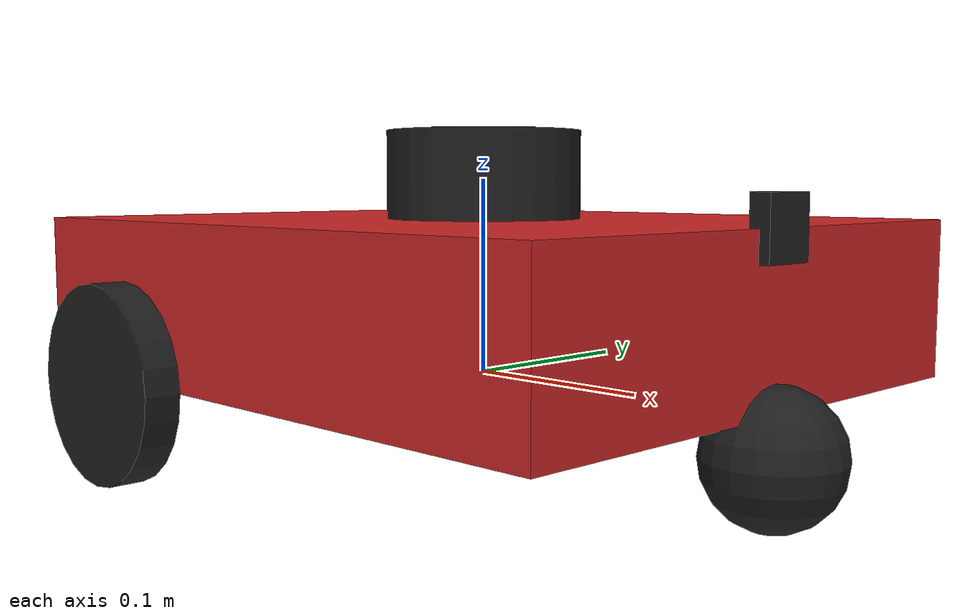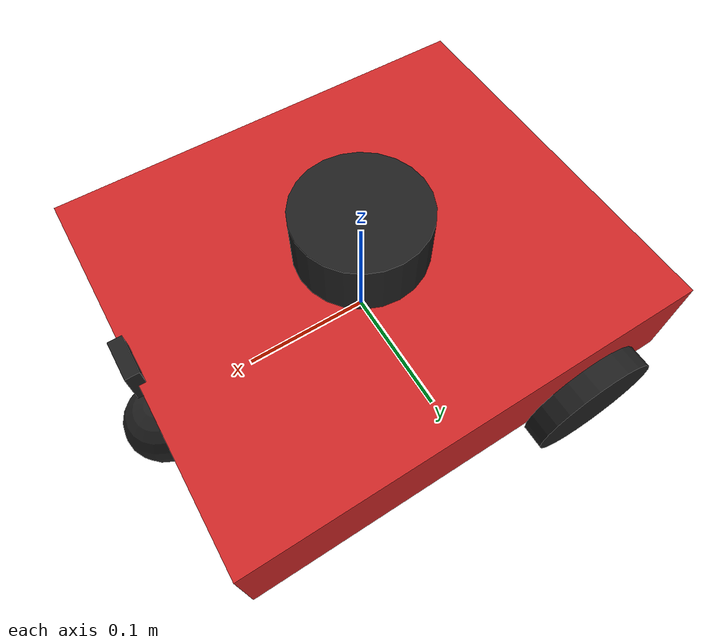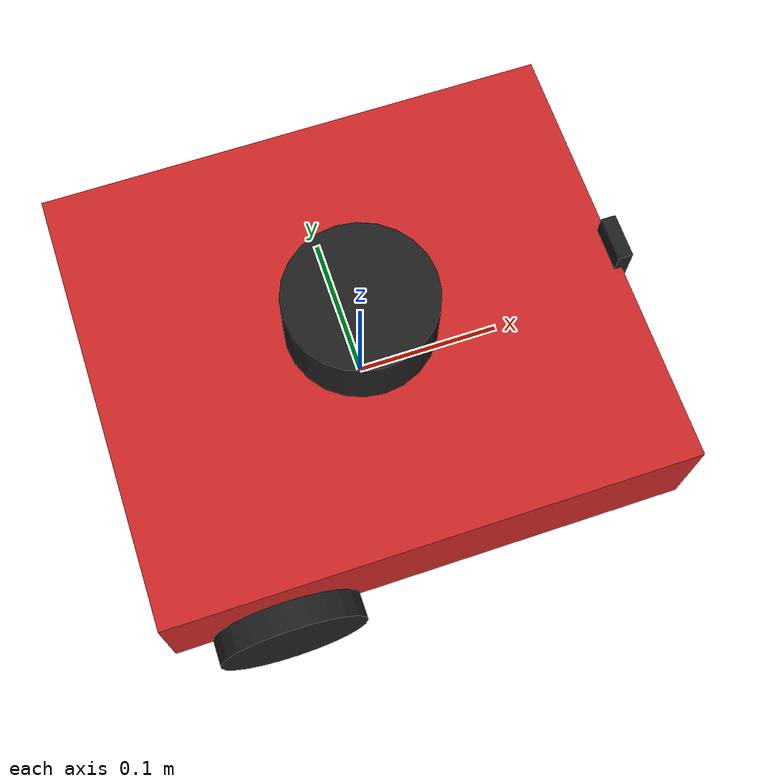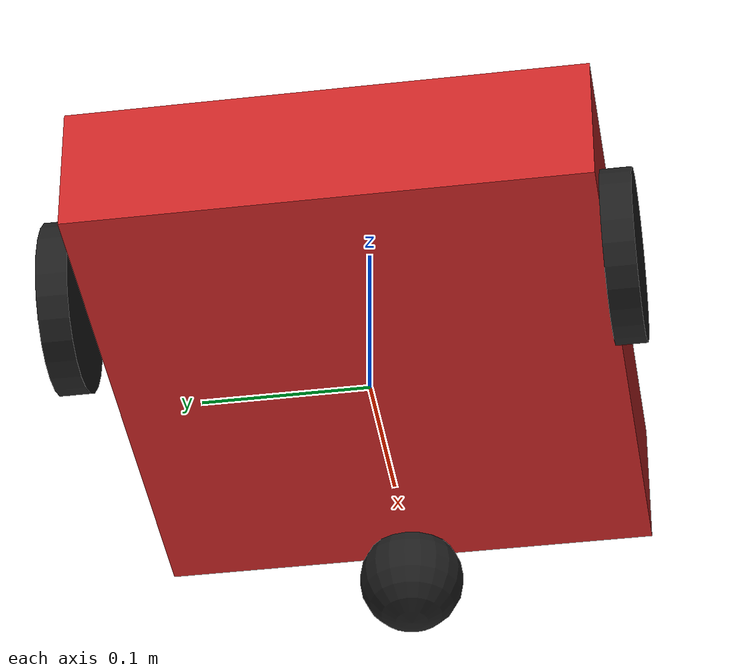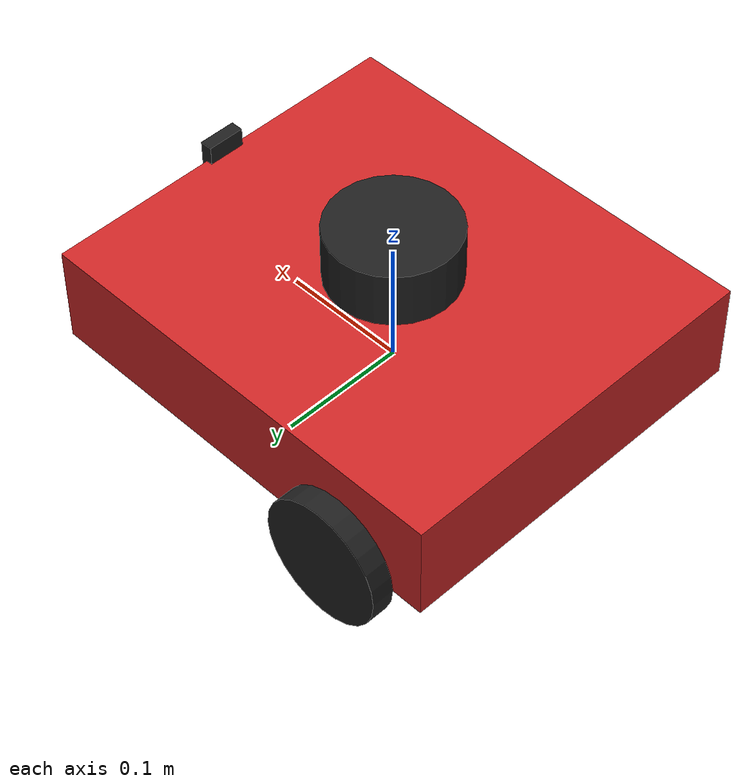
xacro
<?xml version="1.0"?>
<robot xmlns:xacro="http://www.ros.org/wiki/xacro"  name="diff_bot">
    <!-- Main URDF file for Differential Drive Robot -->

    <!-- Include general xacro macros -->
    <xacro:include filename="common.xacro"/>

    <!-- Include sensors -->
    <xacro:include filename="lidar.xacro"/>
    <xacro:include filename="depth_camera.xacro"/>

    <!-- Extra sensors -->

    <!-- Robot Variables -->
    <xacro:property name="chassis_length" value="0.35"/>
    <xacro:property name="chassis_width" value="0.3"/>
    <xacro:property name="chassis_height" value="0.08"/>
    <xacro:property name="chassis_mass" value="4.0"/>
    <xacro:property name="wheel_radius" value="0.05"/>
    <xacro:property name="wheel_thickness" value="0.018"/>
    <xacro:property name="wheel_mass" value="0.3"/>
    <xacro:property name="wheel_offset_x" value="0.1"/>
    <xacro:property name="wheel_offset_y" value="${chassis_width/2 + wheel_thickness/2}"/>
    <xacro:property name="wheel_offset_z" value="0.0"/>
    <xacro:property name="caster_wheel_radius" value="0.032225"/>
    <xacro:property name="caster_wheel_mass" value="0.2"/>
    <xacro:property name="caster_wheel_offset_x" value="${chassis_length/2}"/>
    <xacro:property name="caster_wheel_offset_z" value="${wheel_offset_z - wheel_radius + caster_wheel_radius}"/>

    <!-- Base Link -->
    <link name="base_link"></link>

    <!-- Base Footprint -->
    <joint name="base_footprint_joint" type="fixed">
        <parent link="base_link"/>
        <child link="base_footprint"/>
        <origin xyz="0 0 0" rpy="0 0 0"/>
    </joint>
    <link name="base_footprint"></link>

    <!-- Chassis -->
    <joint name="chassis_joint" type="fixed">
        <parent link="base_link"/>
        <child link="chassis"/>
        <origin xyz="0 0 0"/>
    </joint>
    <link name="chassis">
        <visual>
            <origin xyz="0 0 ${chassis_height/2}"/>
            <geometry>
                <box size="${chassis_length} ${chassis_width} ${chassis_height}"/>
            </geometry>
            <material name="red"/>
        </visual>
        <collision>
            <origin xyz="0 0 ${chassis_height/2}"/>
            <geometry>
                <box size="${chassis_length} ${chassis_width} ${chassis_height}"/>
            </geometry>
        </collision>
        <xacro:inertial_box mass="0.5" x="${chassis_length}" y="${chassis_width}" z="${chassis_height}">
            <origin xyz="0 0 ${chassis_height/2}" rpy="0 0 0"/>
        </xacro:inertial_box>
    </link>

    <!-- Left Wheel -->
    <joint name="left_wheel_joint" type="continuous">
        <parent link="base_link"/>
        <child link="left_wheel"/>
        <origin xyz="${-wheel_offset_x} ${wheel_offset_y} 0" rpy="-${pi/2} 0 0" />
        <axis xyz="0 0 1"/>
    </joint>
    <link name="left_wheel">
        <visual>
            <geometry>
                <cylinder radius="${wheel_radius}" length="${wheel_thickness}"/>
            </geometry>
            <material name="black"/>
        </visual>
        <collision>
            <geometry>
                <sphere radius="${wheel_radius}"/>
            </geometry>
        </collision>
        <xacro:inertial_cylinder mass="${wheel_mass}" length="${wheel_thickness}" radius="${wheel_radius}">
            <origin xyz="0 0 0" rpy="0 0 0"/>
        </xacro:inertial_cylinder>
    </link>

    <!-- Right Wheel -->
    <joint name="right_wheel_joint" type="continuous">
        <parent link="base_link"/>
        <child link="right_wheel"/>
        <origin xyz="${-wheel_offset_x} ${-wheel_offset_y} 0" rpy="${pi/2} 0 0" />
        <axis xyz="0 0 -1"/>
    </joint>
    <link name="right_wheel">
        <visual>
            <geometry>
                <cylinder radius="${wheel_radius}" length="${wheel_thickness}"/>
            </geometry>
            <material name="black"/>
        </visual>
        <collision>
            <geometry>
                <sphere radius="${wheel_radius}"/>
            </geometry>
        </collision>
        <xacro:inertial_cylinder mass="${wheel_mass}" length="${wheel_thickness}" radius="${wheel_radius}">
            <origin xyz="0 0 0" rpy="0 0 0"/>
        </xacro:inertial_cylinder>
    </link>

    <!-- Caster Wheel -->
    <joint name="caster_wheel_joint" type="fixed">
        <parent link="chassis"/>
        <child link="caster_wheel"/>
        <origin xyz="${caster_wheel_offset_x} 0 ${caster_wheel_offset_z}"/>
    </joint>
    <link name="caster_wheel">
        <visual>
            <geometry>
                <sphere radius="${caster_wheel_radius}"/>
            </geometry>
            <material name="black"/>
        </visual>
        <collision>
            <geometry>
                <sphere radius="${caster_wheel_radius}"/>
            </geometry>
        </collision>
        <xacro:inertial_sphere mass="${caster_wheel_mass}" radius="${caster_wheel_radius}">
            <origin xyz="0 0 0" rpy="0 0 0"/>
        </xacro:inertial_sphere>
    </link>

    <!-- Gazebo -->
    <gazebo reference="chassis">
        <material>Gazebo/Red</material>
    </gazebo>

    <gazebo reference="left_wheel">
        <material>Gazebo/Black</material>
    </gazebo>

    <gazebo reference="right_wheel">
        <material>Gazebo/Black</material>
    </gazebo>

    <gazebo reference="caster_wheel">
        <material>Gazebo/Black</material>
        <mu1 value="0.001"/>
        <mu2 value="0.001"/>
    </gazebo>

    <!-- Gazebo plugins -->
    <gazebo>
        <!-- Differential Drive Robot -->
        <plugin filename="gz-sim-diff-drive-system" name="gz::sim::systems::DiffDrive">
            <!-- Wheels -->
            <left_joint>left_wheel_joint</left_joint>
            <right_joint>right_wheel_joint</right_joint>
            <wheel_separation>${wheel_offset_y*2}</wheel_separation>
            <wheel_radius>${wheel_radius}</wheel_radius>
            <!-- Limits -->
            <max_linear_acceleration>6.0</max_linear_acceleration>
            <!-- Frames -->
            <frame_id>odom</frame_id>
            <child_frame_id>base_link</child_frame_id>
            <!-- Output -->
            <tf_topic>/tf</tf_topic>
            <topic>cmd_vel</topic>
            <odom_topic>odom</odom_topic>
            <odom_publisher_frequency>30</odom_publisher_frequency>
        </plugin>

        <!-- Joint State Publisher -->
        <plugin filename="gz-sim-joint-state-publisher-system" name="gz::sim::systems::JointStatePublisher">
            <topic>joint_states</topic>
            <joint_name>left_wheel_joint</joint_name>
            <joint_name>right_wheel_joint</joint_name>
        </plugin>
    </gazebo>

</robot>

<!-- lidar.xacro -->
<robot xmlns:xacro="http://www.ros.org/wiki/xacro" >
    <!-- Lidar's urdf-->
    <joint name="laser_joint" type="fixed">
        <parent link="chassis"/>
        <child link="laser_frame"/>
        <origin xyz="0 0 0.1" rpy="0 0 0"/>
    </joint>
    <link name="laser_frame">
        <visual>
            <geometry>
                <cylinder radius="0.05" length="0.05"/>
            </geometry>
            <material name="black"/>
        </visual>
        <collision>
            <geometry>
                <cylinder radius="0.05" length="0.05"/>
            </geometry>
        </collision>
        <xacro:inertial_cylinder mass="0.1" length="0.05" radius="0.05">
            <origin xyz="0 0 0" rpy="0 0 0"/>
        </xacro:inertial_cylinder>
    </link>

    <!-- 2D Lidar New Gazebo Sensor Plugin  -->
    <gazebo reference="laser_frame">
        <material>Gazebo/Black</material>

        <sensor name="laser" type="gpu_lidar">
            <pose> 0 0 0 0 0 0 </pose>
            <always_on>true</always_on>
            <visualize>true</visualize>
            <update_rate>10</update_rate>
            <topic>scan</topic>
            <gz_frame_id>laser_frame</gz_frame_id>
            <lidar>
                <scan>
                    <horizontal>
                        <samples>360</samples>
                        <min_angle>-3.14</min_angle>
                        <max_angle>3.14</max_angle>
                    </horizontal>
                </scan>
                <range>
                    <min>0.3</min>
                    <max>12</max>
                </range>
            </lidar>
        </sensor>
    </gazebo>

</robot>

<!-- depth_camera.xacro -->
<robot xmlns:xacro="http://www.ros.org/wiki/xacro" >
    <!-- Depth camera's urdf -->
    <joint name="camera_joint" type="fixed">
        <parent link="chassis"/>
        <child link="camera_link"/>
        <origin xyz="0.175 0 0.08" rpy="0 0 0"/>
    </joint>
    <link name="camera_link">
        <visual>
            <geometry>
                <box size="0.010 0.03 0.03"/>
            </geometry>
            <material name="black"/>
        </visual>
    </link>
    <!-- Depth camera Optical link -->
    <joint name="camera_optical_joint" type="fixed">
        <parent link="camera_link"/>
        <child link="camera_link_optical"/>
        <origin xyz="0 0 0" rpy="${-pi/2} 0 ${-pi/2}"/>
    </joint>
    <link name="camera_link_optical"></link>

    <!-- Depth camera Gazebo Sensor Plugin -->
    <gazebo reference="camera_link">
        <material>Gazebo/Black</material>

        <sensor name="rgbd_camera" type="rgbd_camera">
            <pose> 0 0 0 0 0 0 </pose>
            <always_on>true</always_on>
            <visualize>true</visualize>
            <update_rate>30</update_rate>
            <topic>camera</topic>
            <gz_frame_id>camera_link</gz_frame_id>
            <camera>
                <optical_frame_id>camera_link_optical</optical_frame_id>
                <camera_info_topic>camera/camera_info</camera_info_topic>
                <horizontal_fov>1.089</horizontal_fov>
                <image>
                    <format>R8G8B8</format>
                    <width>640</width>
                    <height>480</height>
                </image>
                <clip>
                    <near>0.05</near>
                    <far>8.0</far>
                </clip>
            </camera>
        </sensor>

    </gazebo>

</robot>
